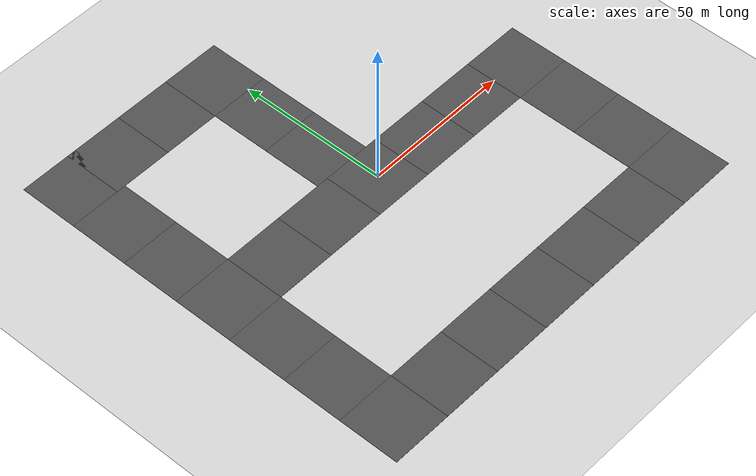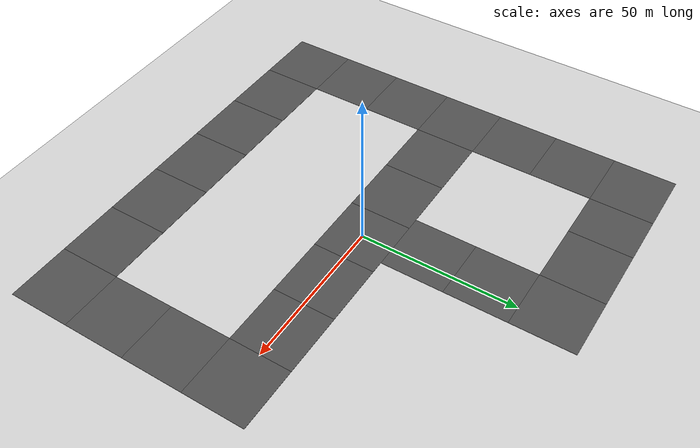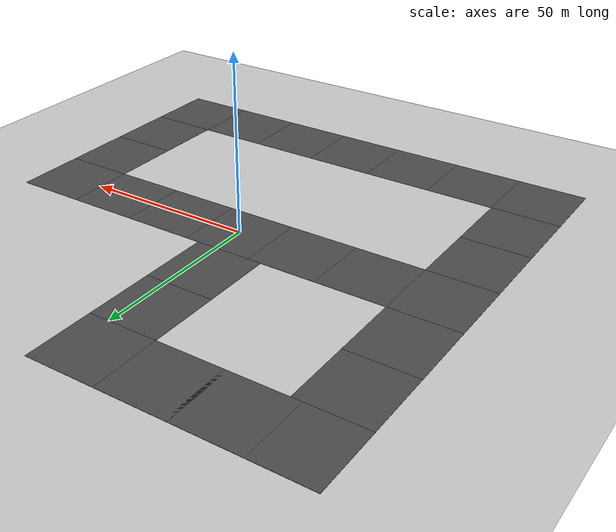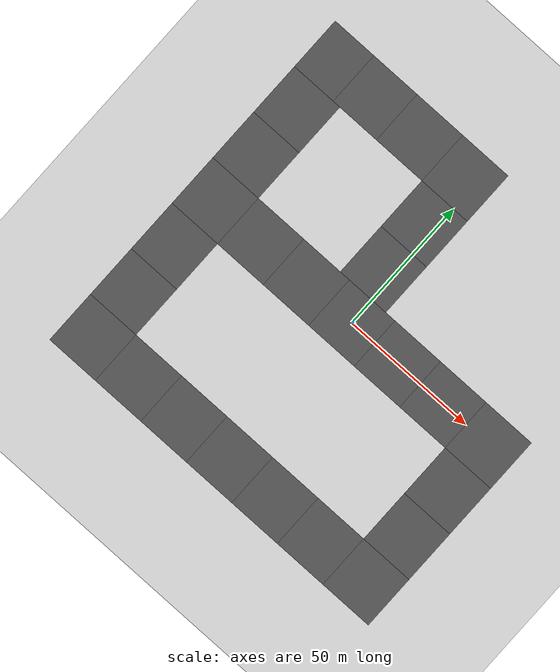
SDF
<sdf version="1.4">
 <world name="default">
  <light name="sun" type="directional">
   <pose>0 0 10 0 -0 0</pose>
   <diffuse>0.8 0.8 0.8 1</diffuse>
   <specular>0.2 0.2 0.2 1</specular>
   <attenuation>
    <range>1000</range>
    <constant>0.9</constant>
    <linear>0.01</linear>
    <quadratic>0.001</quadratic>
   </attenuation>
   <direction>-0.5 0.1 -0.9</direction>
  </light>
  <model name="ground_plane">
   <static>1</static>
   <link name="link">
    <collision name="collision">
     <geometry><plane><normal>0 0 1</normal><size>100 100</size></plane></geometry>
     <surface><friction><ode><mu>100</mu><mu2>50</mu2></ode></friction></surface>
    </collision>
    <visual name="visual">
     <cast_shadows>0</cast_shadows>
     <geometry><plane><normal>0 0 1</normal><size>100 100</size></plane></geometry>
     <material>
      <script><uri>file://media/materials/scripts/gazebo.material</uri><name>Gazebo/Grey</name></script>
     </material>
    </visual>
    <velocity_decay><linear>0</linear><angular>0</angular></velocity_decay>
   </link>
  </model>
  <physics type="ode">
   <max_step_size>0.001</max_step_size>
   <real_time_factor>1</real_time_factor>
   <real_time_update_rate>1000</real_time_update_rate>
   <gravity>0 0 -9.8</gravity>
  </physics>
  <scene><ambient>0.4 0.4 0.4 1</ambient><background>0.7 0.7 0.7 1</background><shadows>1</shadows></scene>
  <spherical_coordinates>
   <surface_model>EARTH_WGS84</surface_model>
   <latitude_deg>0</latitude_deg>
   <longitude_deg>0</longitude_deg>
   <elevation>0</elevation>
   <heading_deg>0</heading_deg>
  </spherical_coordinates>
  <model name="asphalt_plane">
   <static>1</static>
   <link name="link">
    <collision name="collision"><geometry><box><size>20 20 0.1</size></box></geometry></collision>
    <visual name="visual">
     <cast_shadows>0</cast_shadows>
     <geometry><box><size>20 20 0.1</size></box></geometry>
     <material>
      <script>
       <uri>model://asphalt_plane/materials/scripts</uri>
       <uri>model://asphalt_plane/materials/textures</uri>
       <name>vrc/asphalt</name>
      </script>
     </material>
    </visual>
    <velocity_decay><linear>0</linear><angular>0</angular></velocity_decay>
   </link>
  </model>
  <model name="asphalt_plane_0">
   <static>1</static>
   <link name="link">
    <collision name="collision"><geometry><box><size>20 20 0.1</size></box></geometry></collision>
    <visual name="visual">
     <cast_shadows>0</cast_shadows>
     <geometry><box><size>20 20 0.1</size></box></geometry>
     <material>
      <script>
       <uri>model://asphalt_plane/materials/scripts</uri>
       <uri>model://asphalt_plane/materials/textures</uri>
       <name>vrc/asphalt</name>
      </script>
     </material>
    </visual>
    <velocity_decay><linear>0</linear><angular>0</angular></velocity_decay>
   </link>
   <pose>20 0 0 0 -0 0</pose>
  </model>
  <model name="asphalt_plane_1">
   <static>1</static>
   <link name="link">
    <collision name="collision"><geometry><box><size>20 20 0.1</size></box></geometry></collision>
    <visual name="visual">
     <cast_shadows>0</cast_shadows>
     <geometry><box><size>20 20 0.1</size></box></geometry>
     <material>
      <script>
       <uri>model://asphalt_plane/materials/scripts</uri>
       <uri>model://asphalt_plane/materials/textures</uri>
       <name>vrc/asphalt</name>
      </script>
     </material>
    </visual>
    <velocity_decay><linear>0</linear><angular>0</angular></velocity_decay>
   </link>
   <pose>40 0 0 0 -0 0</pose>
  </model>
  <model name="asphalt_plane_2">
   <static>1</static>
   <link name="link">
    <collision name="collision"><geometry><box><size>20 20 0.1</size></box></geometry></collision>
    <visual name="visual">
     <cast_shadows>0</cast_shadows>
     <geometry><box><size>20 20 0.1</size></box></geometry>
     <material>
      <script>
       <uri>model://asphalt_plane/materials/scripts</uri>
       <uri>model://asphalt_plane/materials/textures</uri>
       <name>vrc/asphalt</name>
      </script>
     </material>
    </visual>
    <velocity_decay><linear>0</linear><angular>0</angular></velocity_decay>
   </link>
   <pose>-20 0 0 0 -0 0</pose>
  </model>
  <model name="asphalt_plane_3">
   <static>1</static>
   <link name="link">
    <collision name="collision"><geometry><box><size>20 20 0.1</size></box></geometry></collision>
    <visual name="visual">
     <cast_shadows>0</cast_shadows>
     <geometry><box><size>20 20 0.1</size></box></geometry>
     <material>
      <script>
       <uri>model://asphalt_plane/materials/scripts</uri>
       <uri>model://asphalt_plane/materials/textures</uri>
       <name>vrc/asphalt</name>
      </script>
     </material>
    </visual>
    <velocity_decay><linear>0</linear><angular>0</angular></velocity_decay>
   </link>
   <pose>-40 0 0 0 -0 0</pose>
  </model>
  <model name="asphalt_plane_4">
   <static>1</static>
   <link name="link">
    <collision name="collision"><geometry><box><size>20 20 0.1</size></box></geometry></collision>
    <visual name="visual">
     <cast_shadows>0</cast_shadows>
     <geometry><box><size>20 20 0.1</size></box></geometry>
     <material>
      <script>
       <uri>model://asphalt_plane/materials/scripts</uri>
       <uri>model://asphalt_plane/materials/textures</uri>
       <name>vrc/asphalt</name>
      </script>
     </material>
    </visual>
    <velocity_decay><linear>0</linear><angular>0</angular></velocity_decay>
   </link>
   <pose>-4 20 0 0 -0 0</pose>
  </model>
  <model name="asphalt_plane_5">
   <static>1</static>
   <link name="link">
    <collision name="collision"><geometry><box><size>20 20 0.1</size></box></geometry></collision>
    <visual name="visual">
     <cast_shadows>0</cast_shadows>
     <geometry><box><size>20 20 0.1</size></box></geometry>
     <material>
      <script>
       <uri>model://asphalt_plane/materials/scripts</uri>
       <uri>model://asphalt_plane/materials/textures</uri>
       <name>vrc/asphalt</name>
      </script>
     </material>
    </visual>
    <velocity_decay><linear>0</linear><angular>0</angular></velocity_decay>
   </link>
   <pose>-4 40 0 0 -0 0</pose>
  </model>
  <model name="asphalt_plane_6">
   <static>1</static>
   <link name="link">
    <collision name="collision"><geometry><box><size>20 20 0.1</size></box></geometry></collision>
    <visual name="visual">
     <cast_shadows>0</cast_shadows>
     <geometry><box><size>20 20 0.1</size></box></geometry>
     <material>
      <script>
       <uri>model://asphalt_plane/materials/scripts</uri>
       <uri>model://asphalt_plane/materials/textures</uri>
       <name>vrc/asphalt</name>
      </script>
     </material>
    </visual>
    <velocity_decay><linear>0</linear><angular>0</angular></velocity_decay>
   </link>
   <pose>-60 0 0 0 -0 0</pose>
  </model>
  <model name="asphalt_plane_7">
   <static>1</static>
   <link name="link">
    <collision name="collision"><geometry><box><size>20 20 0.1</size></box></geometry></collision>
    <visual name="visual">
     <cast_shadows>0</cast_shadows>
     <geometry><box><size>20 20 0.1</size></box></geometry>
     <material>
      <script>
       <uri>model://asphalt_plane/materials/scripts</uri>
       <uri>model://asphalt_plane/materials/textures</uri>
       <name>vrc/asphalt</name>
      </script>
     </material>
    </visual>
    <velocity_decay><linear>0</linear><angular>0</angular></velocity_decay>
   </link>
   <pose>-60 40 0 0 -0 0</pose>
  </model>
  <model name="asphalt_plane_8">
   <static>1</static>
   <link name="link">
    <collision name="collision"><geometry><box><size>20 20 0.1</size></box></geometry></collision>
    <visual name="visual">
     <cast_shadows>0</cast_shadows>
     <geometry><box><size>20 20 0.1</size></box></geometry>
     <material>
      <script>
       <uri>model://asphalt_plane/materials/scripts</uri>
       <uri>model://asphalt_plane/materials/textures</uri>
       <name>vrc/asphalt</name>
      </script>
     </material>
    </visual>
    <velocity_decay><linear>0</linear><angular>0</angular></velocity_decay>
   </link>
   <pose>-60 20 0 0 -0 0</pose>
  </model>
  <model name="asphalt_plane_9">
   <static>1</static>
   <link name="link">
    <collision name="collision"><geometry><box><size>20 20 0.1</size></box></geometry></collision>
    <visual name="visual">
     <cast_shadows>0</cast_shadows>
     <geometry><box><size>20 20 0.1</size></box></geometry>
     <material>
      <script>
       <uri>model://asphalt_plane/materials/scripts</uri>
       <uri>model://asphalt_plane/materials/textures</uri>
       <name>vrc/asphalt</name>
      </script>
     </material>
    </visual>
    <velocity_decay><linear>0</linear><angular>0</angular></velocity_decay>
   </link>
   <pose>-24 60 0 0 -0 0</pose>
  </model>
  <model name="asphalt_plane_10">
   <static>1</static>
   <link name="link">
    <collision name="collision"><geometry><box><size>20 20 0.1</size></box></geometry></collision>
    <visual name="visual">
     <cast_shadows>0</cast_shadows>
     <geometry><box><size>20 20 0.1</size></box></geometry>
     <material>
      <script>
       <uri>model://asphalt_plane/materials/scripts</uri>
       <uri>model://asphalt_plane/materials/textures</uri>
       <name>vrc/asphalt</name>
      </script>
     </material>
    </visual>
    <velocity_decay><linear>0</linear><angular>0</angular></velocity_decay>
   </link>
   <pose>-4 60 0 0 -0 0</pose>
  </model>
  <model name="asphalt_plane_11">
   <static>1</static>
   <link name="link">
    <collision name="collision"><geometry><box><size>20 20 0.1</size></box></geometry></collision>
    <visual name="visual">
     <cast_shadows>0</cast_shadows>
     <geometry><box><size>20 20 0.1</size></box></geometry>
     <material>
      <script>
       <uri>model://asphalt_plane/materials/scripts</uri>
       <uri>model://asphalt_plane/materials/textures</uri>
       <name>vrc/asphalt</name>
      </script>
     </material>
    </visual>
    <velocity_decay><linear>0</linear><angular>0</angular></velocity_decay>
   </link>
   <pose>-43 60 0 0 -0 0</pose>
  </model>
  <model name="asphalt_plane_12">
   <static>1</static>
   <link name="link">
    <collision name="collision"><geometry><box><size>20 20 0.1</size></box></geometry></collision>
    <visual name="visual">
     <cast_shadows>0</cast_shadows>
     <geometry><box><size>20 20 0.1</size></box></geometry>
     <material>
      <script>
       <uri>model://asphalt_plane/materials/scripts</uri>
       <uri>model://asphalt_plane/materials/textures</uri>
       <name>vrc/asphalt</name>
      </script>
     </material>
    </visual>
    <velocity_decay><linear>0</linear><angular>0</angular></velocity_decay>
   </link>
   <pose>-60 60 0 0 -0 0</pose>
  </model>
  <model name="asphalt_plane_13">
   <static>1</static>
   <link name="link">
    <collision name="collision"><geometry><box><size>20 20 0.1</size></box></geometry></collision>
    <visual name="visual">
     <cast_shadows>0</cast_shadows>
     <geometry><box><size>20 20 0.1</size></box></geometry>
     <material>
      <script>
       <uri>model://asphalt_plane/materials/scripts</uri>
       <uri>model://asphalt_plane/materials/textures</uri>
       <name>vrc/asphalt</name>
      </script>
     </material>
    </visual>
    <velocity_decay><linear>0</linear><angular>0</angular></velocity_decay>
   </link>
   <pose>60 0 0 0 -0 0</pose>
  </model>
  <model name="asphalt_plane_14">
   <static>1</static>
   <link name="link">
    <collision name="collision"><geometry><box><size>20 20 0.1</size></box></geometry></collision>
    <visual name="visual">
     <cast_shadows>0</cast_shadows>
     <geometry><box><size>20 20 0.1</size></box></geometry>
     <material>
      <script>
       <uri>model://asphalt_plane/materials/scripts</uri>
       <uri>model://asphalt_plane/materials/textures</uri>
       <name>vrc/asphalt</name>
      </script>
     </material>
    </visual>
    <velocity_decay><linear>0</linear><angular>0</angular></velocity_decay>
   </link>
   <pose>60 -20 0 0 -0 0</pose>
  </model>
  <model name="asphalt_plane_15">
   <static>1</static>
   <link name="link">
    <collision name="collision"><geometry><box><size>20 20 0.1</size></box></geometry></collision>
    <visual name="visual">
     <cast_shadows>0</cast_shadows>
     <geometry><box><size>20 20 0.1</size></box></geometry>
     <material>
      <script>
       <uri>model://asphalt_plane/materials/scripts</uri>
       <uri>model://asphalt_plane/materials/textures</uri>
       <name>vrc/asphalt</name>
      </script>
     </material>
    </visual>
    <velocity_decay><linear>0</linear><angular>0</angular></velocity_decay>
   </link>
   <pose>60 -40 0 0 -0 0</pose>
  </model>
  <model name="asphalt_plane_16">
   <static>1</static>
   <link name="link">
    <collision name="collision"><geometry><box><size>20 20 0.1</size></box></geometry></collision>
    <visual name="visual">
     <cast_shadows>0</cast_shadows>
     <geometry><box><size>20 20 0.1</size></box></geometry>
     <material>
      <script>
       <uri>model://asphalt_plane/materials/scripts</uri>
       <uri>model://asphalt_plane/materials/textures</uri>
       <name>vrc/asphalt</name>
      </script>
     </material>
    </visual>
    <velocity_decay><linear>0</linear><angular>0</angular></velocity_decay>
   </link>
   <pose>-60 -20 0 0 -0 0</pose>
  </model>
  <model name="asphalt_plane_17">
   <static>1</static>
   <link name="link">
    <collision name="collision"><geometry><box><size>20 20 0.1</size></box></geometry></collision>
    <visual name="visual">
     <cast_shadows>0</cast_shadows>
     <geometry><box><size>20 20 0.1</size></box></geometry>
     <material>
      <script>
       <uri>model://asphalt_plane/materials/scripts</uri>
       <uri>model://asphalt_plane/materials/textures</uri>
       <name>vrc/asphalt</name>
      </script>
     </material>
    </visual>
    <velocity_decay><linear>0</linear><angular>0</angular></velocity_decay>
   </link>
   <pose>-60 -40 0 0 -0 0</pose>
  </model>
  <model name="asphalt_plane_18">
   <static>1</static>
   <link name="link">
    <collision name="collision"><geometry><box><size>20 20 0.1</size></box></geometry></collision>
    <visual name="visual">
     <cast_shadows>0</cast_shadows>
     <geometry><box><size>20 20 0.1</size></box></geometry>
     <material>
      <script>
       <uri>model://asphalt_plane/materials/scripts</uri>
       <uri>model://asphalt_plane/materials/textures</uri>
       <name>vrc/asphalt</name>
      </script>
     </material>
    </visual>
    <velocity_decay><linear>0</linear><angular>0</angular></velocity_decay>
   </link>
   <pose>60 -60 0 0 -0 0</pose>
  </model>
  <model name="asphalt_plane_19">
   <static>1</static>
   <link name="link">
    <collision name="collision"><geometry><box><size>20 20 0.1</size></box></geometry></collision>
    <visual name="visual">
     <cast_shadows>0</cast_shadows>
     <geometry><box><size>20 20 0.1</size></box></geometry>
     <material>
      <script>
       <uri>model://asphalt_plane/materials/scripts</uri>
       <uri>model://asphalt_plane/materials/textures</uri>
       <name>vrc/asphalt</name>
      </script>
     </material>
    </visual>
    <velocity_decay><linear>0</linear><angular>0</angular></velocity_decay>
   </link>
   <pose>40 -60 0 0 -0 0</pose>
  </model>
  <model name="asphalt_plane_20">
   <static>1</static>
   <link name="link">
    <collision name="collision"><geometry><box><size>20 20 0.1</size></box></geometry></collision>
    <visual name="visual">
     <cast_shadows>0</cast_shadows>
     <geometry><box><size>20 20 0.1</size></box></geometry>
     <material>
      <script>
       <uri>model://asphalt_plane/materials/scripts</uri>
       <uri>model://asphalt_plane/materials/textures</uri>
       <name>vrc/asphalt</name>
      </script>
     </material>
    </visual>
    <velocity_decay><linear>0</linear><angular>0</angular></velocity_decay>
   </link>
   <pose>20 -60 0 0 -0 0</pose>
  </model>
  <model name="asphalt_plane_21">
   <static>1</static>
   <link name="link">
    <collision name="collision"><geometry><box><size>20 20 0.1</size></box></geometry></collision>
    <visual name="visual">
     <cast_shadows>0</cast_shadows>
     <geometry><box><size>20 20 0.1</size></box></geometry>
     <material>
      <script>
       <uri>model://asphalt_plane/materials/scripts</uri>
       <uri>model://asphalt_plane/materials/textures</uri>
       <name>vrc/asphalt</name>
      </script>
     </material>
    </visual>
    <velocity_decay><linear>0</linear><angular>0</angular></velocity_decay>
   </link>
   <pose>0 -60 0 0 -0 0</pose>
  </model>
  <model name="asphalt_plane_23">
   <static>1</static>
   <link name="link">
    <collision name="collision"><geometry><box><size>20 20 0.1</size></box></geometry></collision>
    <visual name="visual">
     <cast_shadows>0</cast_shadows>
     <geometry><box><size>20 20 0.1</size></box></geometry>
     <material>
      <script>
       <uri>model://asphalt_plane/materials/scripts</uri>
       <uri>model://asphalt_plane/materials/textures</uri>
       <name>vrc/asphalt</name>
      </script>
     </material>
    </visual>
    <velocity_decay><linear>0</linear><angular>0</angular></velocity_decay>
   </link>
   <pose>-60 -60 0 0 -0 0</pose>
  </model>
  <model name="asphalt_plane_24">
   <static>1</static>
   <link name="link">
    <collision name="collision"><geometry><box><size>20 20 0.1</size></box></geometry></collision>
    <visual name="visual">
     <cast_shadows>0</cast_shadows>
     <geometry><box><size>20 20 0.1</size></box></geometry>
     <material>
      <script>
       <uri>model://asphalt_plane/materials/scripts</uri>
       <uri>model://asphalt_plane/materials/textures</uri>
       <name>vrc/asphalt</name>
      </script>
     </material>
    </visual>
    <velocity_decay><linear>0</linear><angular>0</angular></velocity_decay>
   </link>
   <pose>-20 -60 0 0 -0 0</pose>
  </model>
  <model name="asphalt_plane_25">
   <static>1</static>
   <link name="link">
    <collision name="collision"><geometry><box><size>20 20 0.1</size></box></geometry></collision>
    <visual name="visual">
     <cast_shadows>0</cast_shadows>
     <geometry><box><size>20 20 0.1</size></box></geometry>
     <material>
      <script>
       <uri>model://asphalt_plane/materials/scripts</uri>
       <uri>model://asphalt_plane/materials/textures</uri>
       <name>vrc/asphalt</name>
      </script>
     </material>
    </visual>
    <velocity_decay><linear>0</linear><angular>0</angular></velocity_decay>
   </link>
   <pose>-40 -60 0 0 -0 0</pose>
  </model>
 </world>
</sdf>
